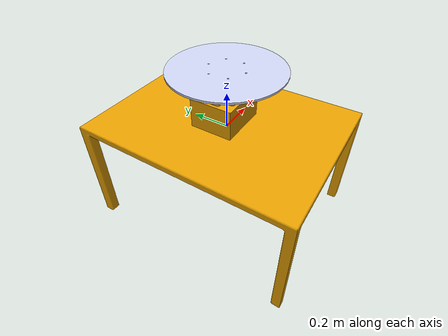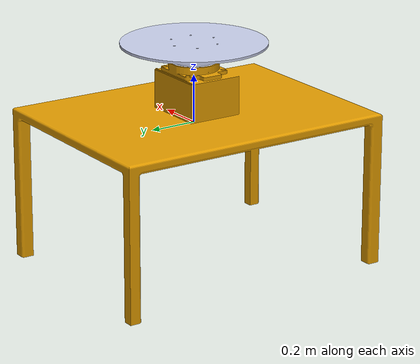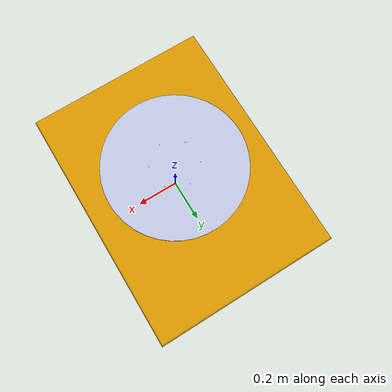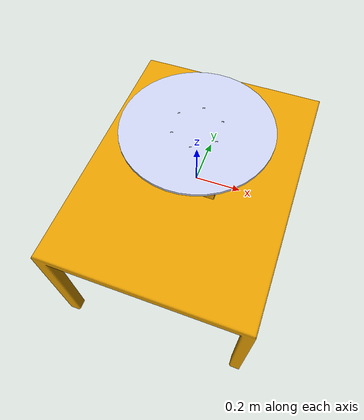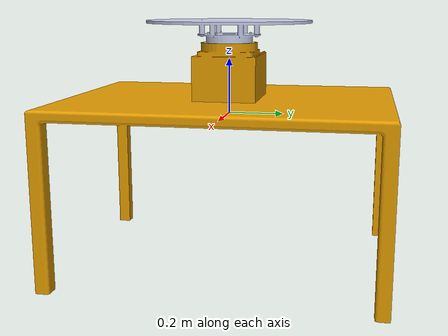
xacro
<?xml version="1.0" encoding="utf-8"?>
<robot name="turn_table" xmlns:xacro="http://www.ros.org/wiki/xacro">
  <xacro:include filename="$(find turn_table_robot)/urdf/turn_table.gazebo" />
  <gazebo reference="rotation_Link">
       <material>Gazebo/Blue</material>
    </gazebo>
  <link name="base">
    <inertial>
      <origin xyz="5.47630436823313 0.00445137401296207 0.127274647707627" rpy="0 0 0" />
      <mass value="53" />
      <inertia
        ixx="4.69052174516768"
        ixy="-2.85464416367111E-06"
        ixz="6.14968020065979E-06"
        iyy="11.0842686073968"
        iyz="-1.23849027826522E-05"
        izz="7.82834235009259" />
    </inertial>
    <visual>
      <origin
        xyz="-0.147933831436891 -5.47629333274696 0"
        rpy="0 0 1.57079" />
      <geometry>
        <mesh
          filename="package://turn_table_robot/meshes/base_link.STL" />
      </geometry>
    </visual>
    <collision>
      <origin
        xyz="0 0 0"
        rpy="0 0 0" />
      <geometry>
        <mesh
          filename="package://turn_table_robot/meshes/base_link.STL" />
      </geometry>
    </collision>
  </link>
 <link name="controller_box">
    <collision>
      <origin rpy="0 0 0" xyz="-0.325 0 -0.38"/>
      <geometry>
        <box size="0.22 0.4 0.53"/>
      </geometry>
    </collision>
  </link>
  <joint name="controller_box_fixed" type="fixed">
    <origin rpy="0 0 0" xyz="0.0 0.0 0.0"/>
    <parent link="base"/>
    <child link="controller_box"/>
  </joint>

  <link
    name="rotation_Link">
    <inertial>
      <origin
        xyz="-9.32587340685131E-14 -9.32032229172819E-14 0.0772872732553641"
        rpy="0 0 0" />
      <mass
        value="4.54714819339239" />
      <inertia
        ixx="0.0677428262810966"
        ixy="-3.53126796518736E-18"
        ixz="-8.0168446404932E-14"
        iyy="0.0677428262810966"
        iyz="-8.07156753739356E-14"
        izz="0.134697984247435" />
    </inertial>
    <visual>
      <origin
        xyz="0 0 0.228567473840997"
        rpy="0 0 0" />
      <geometry>
        <mesh
          filename="package://turn_table_robot/meshes/rotation_Link.STL" />
      </geometry>
      <material
        name="">
        <color
          rgba="0.792156862745098 0.819607843137255 0.933333333333333 1" />
      </material>
    </visual>
    <collision>
      <origin
        xyz="0 0 0.228567473840997"
        rpy="0 0 0" />
      <geometry>
        <mesh
          filename="package://turn_table_robot/meshes/rotation_Link.STL" />
      </geometry>
    </collision>
  </link>
  <joint
    name="joint"
    type="revolute">
    <origin
      xyz="0 0 0"
      rpy="0 0 0" />
    <parent
      link="base" />
    <child
      link="rotation_Link" />
    <axis
      xyz="0 0 1" />
    <limit effort="1000.0" lower="-3.14" upper="3.14" velocity="0.5"/>
    <dynamics damping="0.7" />
  </joint>

  <!-- transmission -->
  <transmission name="trans">
    <type>transmission_interface/SimpleTransmission</type>
    <joint name="joint">
      <hardwareInterface>hardware_interface/EffortJointInterface</hardwareInterface>
    </joint>
    <actuator name="motor">
      <hardwareInterface>hardware_interface/EffortJointInterface</hardwareInterface>
      <mechanicalReduction>1</mechanicalReduction>
    </actuator>
  </transmission>

</robot>
